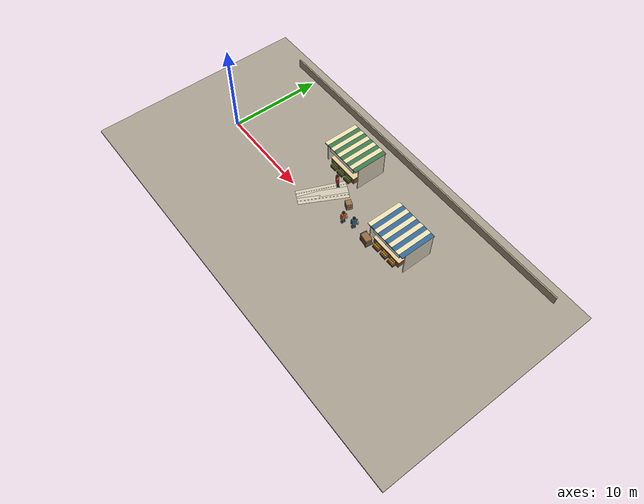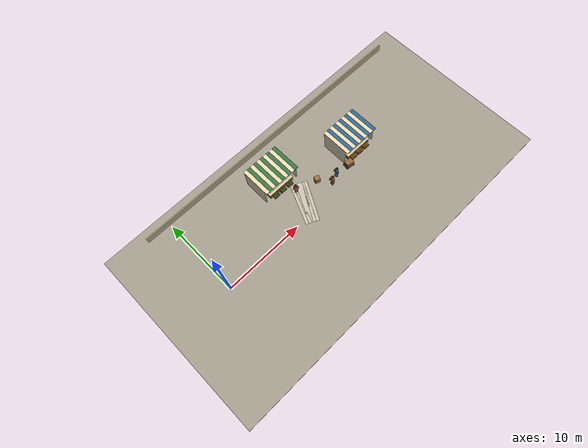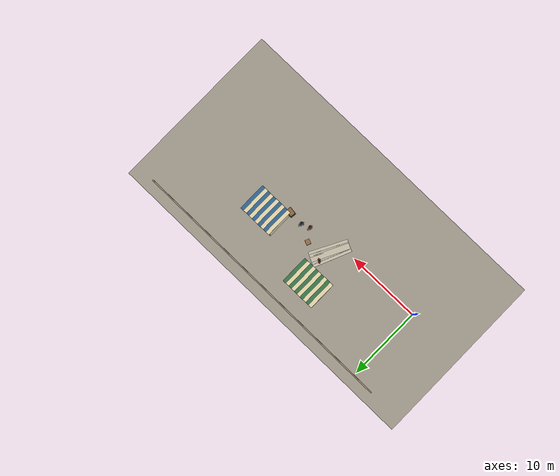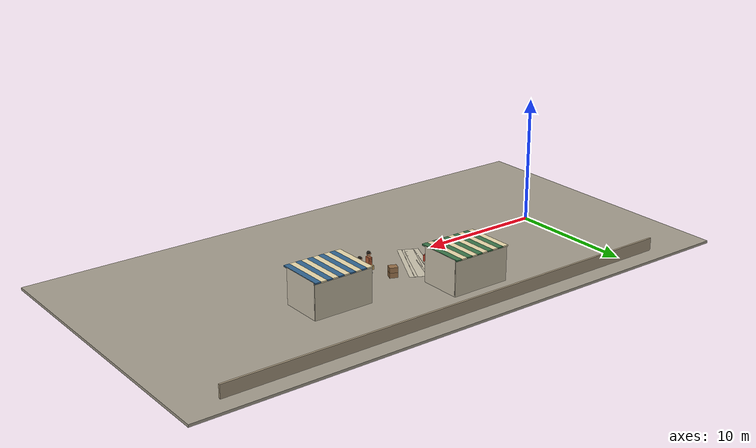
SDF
<sdf version="1.10">
 <world name="swan_market">
  <model name="ground">
   <static>true</static>
   <pose>15 0 -0.1 0 0 0</pose>
   <link name="body">
    <collision name="box_collision"><geometry><box><size>46 24 0.2</size></box></geometry></collision>
    <visual name="box_visual">
     <geometry><box><size>46 24 0.2</size></box></geometry>
     <material><ambient>0.64 0.61 0.55 1</ambient><diffuse>0.64 0.61 0.55 1</diffuse></material>
    </visual>
   </link>
  </model>
  <model name="market_paving_28">
   <static>true</static>
   <pose>12.25 1.7901 0.002 0 0 -0.40758</pose>
   <link name="body">
    <visual name="box_visual">
     <geometry><box><size>0.75 5.2 0.004</size></box></geometry>
     <material><ambient>0.79 0.76 0.68 1</ambient><diffuse>0.79 0.76 0.68 1</diffuse></material>
    </visual>
   </link>
  </model>
  <model name="paving_joint_28">
   <static>true</static>
   <pose>12.25 1.7901 0.0045 0 0 -0.40758</pose>
   <link name="body">
    <visual name="box_visual">
     <geometry><box><size>0.025 5.2 0.001</size></box></geometry>
     <material><ambient>0.67 0.64 0.57 1</ambient><diffuse>0.67 0.64 0.57 1</diffuse></material>
    </visual>
   </link>
  </model>
  <model name="market_paving_29">
   <static>true</static>
   <pose>12.75 1.5562 0.002 0 0 -0.46221</pose>
   <link name="body">
    <visual name="box_visual">
     <geometry><box><size>0.75 5.2 0.004</size></box></geometry>
     <material><ambient>0.79 0.76 0.68 1</ambient><diffuse>0.79 0.76 0.68 1</diffuse></material>
    </visual>
   </link>
  </model>
  <model name="market_paving_30">
   <static>true</static>
   <pose>13.25 1.2978 0.002 0 0 -0.48699</pose>
   <link name="body">
    <visual name="box_visual">
     <geometry><box><size>0.75 5.2 0.004</size></box></geometry>
     <material><ambient>0.79 0.76 0.68 1</ambient><diffuse>0.79 0.76 0.68 1</diffuse></material>
    </visual>
   </link>
  </model>
  <model name="paving_joint_30">
   <static>true</static>
   <pose>13.25 1.2978 0.0045 0 0 -0.48699</pose>
   <link name="body">
    <visual name="box_visual">
     <geometry><box><size>0.025 5.2 0.001</size></box></geometry>
     <material><ambient>0.67 0.64 0.57 1</ambient><diffuse>0.67 0.64 0.57 1</diffuse></material>
    </visual>
   </link>
  </model>
  <model name="boundary_1">
   <static>true</static>
   <pose>16 10.5 0.5 0 0 0</pose>
   <link name="body">
    <collision name="box_collision"><geometry><box><size>38 0.15 1</size></box></geometry></collision>
    <visual name="box_visual">
     <geometry><box><size>38 0.15 1</size></box></geometry>
     <material><ambient>0.65 0.59 0.49 1</ambient><diffuse>0.65 0.59 0.49 1</diffuse></material>
    </visual>
   </link>
  </model>
  <model name="stall_01">
   <static>true</static>
   <pose>12 6.3425 0 0 0 0</pose>
   <link name="body">
    <collision name="rear_collision">
     <pose>0 1.65 1.4 0 0 0</pose>
     <geometry><box><size>4.8 0.15 2.8</size></box></geometry>
    </collision>
    <visual name="rear_visual">
     <pose>0 1.65 1.4 0 0 0</pose>
     <geometry><box><size>4.8 0.15 2.8</size></box></geometry>
     <material><ambient>0.78 0.74 0.65 1</ambient><diffuse>0.78 0.74 0.65 1</diffuse></material>
    </visual>
    <collision name="side_-2.35_collision">
     <pose>-2.35 0 1.4 0 0 0</pose>
     <geometry><box><size>0.12 3.3 2.8</size></box></geometry>
    </collision>
    <visual name="side_-2.35_visual">
     <pose>-2.35 0 1.4 0 0 0</pose>
     <geometry><box><size>0.12 3.3 2.8</size></box></geometry>
     <material><ambient>0.81 0.77 0.69 1</ambient><diffuse>0.81 0.77 0.69 1</diffuse></material>
    </visual>
    <collision name="side_2.35_collision">
     <pose>2.35 0 1.4 0 0 0</pose>
     <geometry><box><size>0.12 3.3 2.8</size></box></geometry>
    </collision>
    <visual name="side_2.35_visual">
     <pose>2.35 0 1.4 0 0 0</pose>
     <geometry><box><size>0.12 3.3 2.8</size></box></geometry>
     <material><ambient>0.81 0.77 0.69 1</ambient><diffuse>0.81 0.77 0.69 1</diffuse></material>
    </visual>
    <collision name="counter_collision">
     <pose>0 -1.22 0.4 0 0 0</pose>
     <geometry><box><size>3.5 0.85 0.8</size></box></geometry>
    </collision>
    <visual name="counter_visual">
     <pose>0 -1.22 0.4 0 0 0</pose>
     <geometry><box><size>3.5 0.85 0.8</size></box></geometry>
     <material><ambient>0.47 0.32 0.21 1</ambient><diffuse>0.47 0.32 0.21 1</diffuse></material>
    </visual>
    <collision name="counter_top_collision">
     <pose>0 -1.22 0.83 0 0 0</pose>
     <geometry><box><size>3.6 0.95 0.06</size></box></geometry>
    </collision>
    <visual name="counter_top_visual">
     <pose>0 -1.22 0.83 0 0 0</pose>
     <geometry><box><size>3.6 0.95 0.06</size></box></geometry>
     <material><ambient>0.86 0.77 0.59 1</ambient><diffuse>0.86 0.77 0.59 1</diffuse></material>
    </visual>
    <collision name="awning_0_collision">
     <pose>-2.16 -0.1 2.78 0 0 0</pose>
     <geometry><box><size>0.48 3.85 0.1</size></box></geometry>
    </collision>
    <visual name="awning_0_visual">
     <pose>-2.16 -0.1 2.78 0 0 0</pose>
     <geometry><box><size>0.48 3.85 0.1</size></box></geometry>
     <material><ambient>0.92 0.86 0.68 1</ambient><diffuse>0.92 0.86 0.68 1</diffuse></material>
    </visual>
    <collision name="awning_1_collision">
     <pose>-1.68 -0.1 2.78 0 0 0</pose>
     <geometry><box><size>0.48 3.85 0.1</size></box></geometry>
    </collision>
    <visual name="awning_1_visual">
     <pose>-1.68 -0.1 2.78 0 0 0</pose>
     <geometry><box><size>0.48 3.85 0.1</size></box></geometry>
     <material><ambient>0.23 0.46 0.29 1</ambient><diffuse>0.23 0.46 0.29 1</diffuse></material>
    </visual>
    <collision name="awning_2_collision">
     <pose>-1.2 -0.1 2.78 0 0 0</pose>
     <geometry><box><size>0.48 3.85 0.1</size></box></geometry>
    </collision>
    <visual name="awning_2_visual">
     <pose>-1.2 -0.1 2.78 0 0 0</pose>
     <geometry><box><size>0.48 3.85 0.1</size></box></geometry>
     <material><ambient>0.92 0.86 0.68 1</ambient><diffuse>0.92 0.86 0.68 1</diffuse></material>
    </visual>
    <collision name="awning_3_collision">
     <pose>-0.72 -0.1 2.78 0 0 0</pose>
     <geometry><box><size>0.48 3.85 0.1</size></box></geometry>
    </collision>
    <visual name="awning_3_visual">
     <pose>-0.72 -0.1 2.78 0 0 0</pose>
     <geometry><box><size>0.48 3.85 0.1</size></box></geometry>
     <material><ambient>0.23 0.46 0.29 1</ambient><diffuse>0.23 0.46 0.29 1</diffuse></material>
    </visual>
    <collision name="awning_4_collision">
     <pose>-0.24 -0.1 2.78 0 0 0</pose>
     <geometry><box><size>0.48 3.85 0.1</size></box></geometry>
    </collision>
    <visual name="awning_4_visual">
     <pose>-0.24 -0.1 2.78 0 0 0</pose>
     <geometry><box><size>0.48 3.85 0.1</size></box></geometry>
     <material><ambient>0.92 0.86 0.68 1</ambient><diffuse>0.92 0.86 0.68 1</diffuse></material>
    </visual>
    <collision name="awning_5_collision">
     <pose>0.24 -0.1 2.78 0 0 0</pose>
     <geometry><box><size>0.48 3.85 0.1</size></box></geometry>
    </collision>
    <visual name="awning_5_visual">
     <pose>0.24 -0.1 2.78 0 0 0</pose>
     <geometry><box><size>0.48 3.85 0.1</size></box></geometry>
     <material><ambient>0.23 0.46 0.29 1</ambient><diffuse>0.23 0.46 0.29 1</diffuse></material>
    </visual>
    <collision name="awning_6_collision">
     <pose>0.72 -0.1 2.78 0 0 0</pose>
     <geometry><box><size>0.48 3.85 0.1</size></box></geometry>
    </collision>
    <visual name="awning_6_visual">
     <pose>0.72 -0.1 2.78 0 0 0</pose>
     <geometry><box><size>0.48 3.85 0.1</size></box></geometry>
     <material><ambient>0.92 0.86 0.68 1</ambient><diffuse>0.92 0.86 0.68 1</diffuse></material>
    </visual>
    <collision name="awning_7_collision">
     <pose>1.2 -0.1 2.78 0 0 0</pose>
     <geometry><box><size>0.48 3.85 0.1</size></box></geometry>
    </collision>
    <visual name="awning_7_visual">
     <pose>1.2 -0.1 2.78 0 0 0</pose>
     <geometry><box><size>0.48 3.85 0.1</size></box></geometry>
     <material><ambient>0.23 0.46 0.29 1</ambient><diffuse>0.23 0.46 0.29 1</diffuse></material>
    </visual>
    <collision name="awning_8_collision">
     <pose>1.68 -0.1 2.78 0 0 0</pose>
     <geometry><box><size>0.48 3.85 0.1</size></box></geometry>
    </collision>
    <visual name="awning_8_visual">
     <pose>1.68 -0.1 2.78 0 0 0</pose>
     <geometry><box><size>0.48 3.85 0.1</size></box></geometry>
     <material><ambient>0.92 0.86 0.68 1</ambient><diffuse>0.92 0.86 0.68 1</diffuse></material>
    </visual>
    <collision name="awning_9_collision">
     <pose>2.16 -0.1 2.78 0 0 0</pose>
     <geometry><box><size>0.48 3.85 0.1</size></box></geometry>
    </collision>
    <visual name="awning_9_visual">
     <pose>2.16 -0.1 2.78 0 0 0</pose>
     <geometry><box><size>0.48 3.85 0.1</size></box></geometry>
     <material><ambient>0.23 0.46 0.29 1</ambient><diffuse>0.23 0.46 0.29 1</diffuse></material>
    </visual>
    <collision name="crate_-1_collision">
     <pose>-1.04 -1.77 0.15 0 0 0</pose>
     <geometry><box><size>0.78 0.6 0.3</size></box></geometry>
    </collision>
    <visual name="crate_-1_visual">
     <pose>-1.04 -1.77 0.15 0 0 0</pose>
     <geometry><box><size>0.78 0.6 0.3</size></box></geometry>
     <material><ambient>0.4 0.28 0.15 1</ambient><diffuse>0.4 0.28 0.15 1</diffuse></material>
    </visual>
    <visual name="produce_-1_0_visual">
     <pose>-1.25 -1.88 0.39 0 0 0</pose>
     <geometry><sphere><radius>0.105</radius></sphere></geometry>
     <material><ambient>0.31 0.58 0.16 1</ambient><diffuse>0.31 0.58 0.16 1</diffuse></material>
    </visual>
    <visual name="produce_-1_1_visual">
     <pose>-1.04 -1.88 0.39 0 0 0</pose>
     <geometry><sphere><radius>0.105</radius></sphere></geometry>
     <material><ambient>0.31 0.58 0.16 1</ambient><diffuse>0.31 0.58 0.16 1</diffuse></material>
    </visual>
    <visual name="produce_-1_2_visual">
     <pose>-0.83 -1.88 0.39 0 0 0</pose>
     <geometry><sphere><radius>0.105</radius></sphere></geometry>
     <material><ambient>0.31 0.58 0.16 1</ambient><diffuse>0.31 0.58 0.16 1</diffuse></material>
    </visual>
    <visual name="produce_-1_3_visual">
     <pose>-1.25 -1.66 0.39 0 0 0</pose>
     <geometry><sphere><radius>0.105</radius></sphere></geometry>
     <material><ambient>0.31 0.58 0.16 1</ambient><diffuse>0.31 0.58 0.16 1</diffuse></material>
    </visual>
    <visual name="produce_-1_4_visual">
     <pose>-1.04 -1.66 0.39 0 0 0</pose>
     <geometry><sphere><radius>0.105</radius></sphere></geometry>
     <material><ambient>0.31 0.58 0.16 1</ambient><diffuse>0.31 0.58 0.16 1</diffuse></material>
    </visual>
    <visual name="produce_-1_5_visual">
     <pose>-0.83 -1.66 0.39 0 0 0</pose>
     <geometry><sphere><radius>0.105</radius></sphere></geometry>
     <material><ambient>0.31 0.58 0.16 1</ambient><diffuse>0.31 0.58 0.16 1</diffuse></material>
    </visual>
    <collision name="crate_0_collision">
     <pose>0 -1.77 0.15 0 0 0</pose>
     <geometry><box><size>0.78 0.6 0.3</size></box></geometry>
    </collision>
    <visual name="crate_0_visual">
     <pose>0 -1.77 0.15 0 0 0</pose>
     <geometry><box><size>0.78 0.6 0.3</size></box></geometry>
     <material><ambient>0.4 0.28 0.15 1</ambient><diffuse>0.4 0.28 0.15 1</diffuse></material>
    </visual>
    <visual name="produce_0_0_visual">
     <pose>-0.21 -1.88 0.39 0 0 0</pose>
     <geometry><sphere><radius>0.105</radius></sphere></geometry>
     <material><ambient>0.31 0.58 0.16 1</ambient><diffuse>0.31 0.58 0.16 1</diffuse></material>
    </visual>
    <visual name="produce_0_1_visual">
     <pose>0 -1.88 0.39 0 0 0</pose>
     <geometry><sphere><radius>0.105</radius></sphere></geometry>
     <material><ambient>0.31 0.58 0.16 1</ambient><diffuse>0.31 0.58 0.16 1</diffuse></material>
    </visual>
    <visual name="produce_0_2_visual">
     <pose>0.21 -1.88 0.39 0 0 0</pose>
     <geometry><sphere><radius>0.105</radius></sphere></geometry>
     <material><ambient>0.31 0.58 0.16 1</ambient><diffuse>0.31 0.58 0.16 1</diffuse></material>
    </visual>
    <visual name="produce_0_3_visual">
     <pose>-0.21 -1.66 0.39 0 0 0</pose>
     <geometry><sphere><radius>0.105</radius></sphere></geometry>
     <material><ambient>0.31 0.58 0.16 1</ambient><diffuse>0.31 0.58 0.16 1</diffuse></material>
    </visual>
    <visual name="produce_0_4_visual">
     <pose>0 -1.66 0.39 0 0 0</pose>
     <geometry><sphere><radius>0.105</radius></sphere></geometry>
     <material><ambient>0.31 0.58 0.16 1</ambient><diffuse>0.31 0.58 0.16 1</diffuse></material>
    </visual>
    <visual name="produce_0_5_visual">
     <pose>0.21 -1.66 0.39 0 0 0</pose>
     <geometry><sphere><radius>0.105</radius></sphere></geometry>
     <material><ambient>0.31 0.58 0.16 1</ambient><diffuse>0.31 0.58 0.16 1</diffuse></material>
    </visual>
    <collision name="crate_1_collision">
     <pose>1.04 -1.77 0.15 0 0 0</pose>
     <geometry><box><size>0.78 0.6 0.3</size></box></geometry>
    </collision>
    <visual name="crate_1_visual">
     <pose>1.04 -1.77 0.15 0 0 0</pose>
     <geometry><box><size>0.78 0.6 0.3</size></box></geometry>
     <material><ambient>0.4 0.28 0.15 1</ambient><diffuse>0.4 0.28 0.15 1</diffuse></material>
    </visual>
    <visual name="produce_1_0_visual">
     <pose>0.83 -1.88 0.39 0 0 0</pose>
     <geometry><sphere><radius>0.105</radius></sphere></geometry>
     <material><ambient>0.31 0.58 0.16 1</ambient><diffuse>0.31 0.58 0.16 1</diffuse></material>
    </visual>
    <visual name="produce_1_1_visual">
     <pose>1.04 -1.88 0.39 0 0 0</pose>
     <geometry><sphere><radius>0.105</radius></sphere></geometry>
     <material><ambient>0.31 0.58 0.16 1</ambient><diffuse>0.31 0.58 0.16 1</diffuse></material>
    </visual>
    <visual name="produce_1_2_visual">
     <pose>1.25 -1.88 0.39 0 0 0</pose>
     <geometry><sphere><radius>0.105</radius></sphere></geometry>
     <material><ambient>0.31 0.58 0.16 1</ambient><diffuse>0.31 0.58 0.16 1</diffuse></material>
    </visual>
    <visual name="produce_1_3_visual">
     <pose>0.83 -1.66 0.39 0 0 0</pose>
     <geometry><sphere><radius>0.105</radius></sphere></geometry>
     <material><ambient>0.31 0.58 0.16 1</ambient><diffuse>0.31 0.58 0.16 1</diffuse></material>
    </visual>
    <visual name="produce_1_4_visual">
     <pose>1.04 -1.66 0.39 0 0 0</pose>
     <geometry><sphere><radius>0.105</radius></sphere></geometry>
     <material><ambient>0.31 0.58 0.16 1</ambient><diffuse>0.31 0.58 0.16 1</diffuse></material>
    </visual>
    <visual name="produce_1_5_visual">
     <pose>1.25 -1.66 0.39 0 0 0</pose>
     <geometry><sphere><radius>0.105</radius></sphere></geometry>
     <material><ambient>0.31 0.58 0.16 1</ambient><diffuse>0.31 0.58 0.16 1</diffuse></material>
    </visual>
   </link>
  </model>
  <model name="signboard_1">
   <static>true</static>
   <pose>12 4.5825 2.24 0 0 0</pose>
   <link name="body">
    <collision name="box_collision"><geometry><box><size>3.65 0.08 0.72</size></box></geometry></collision>
    <visual name="box_visual">
     <geometry><box><size>3.65 0.08 0.72</size></box></geometry>
     <material><ambient>0.23 0.46 0.29 1</ambient><diffuse>0.23 0.46 0.29 1</diffuse></material>
    </visual>
   </link>
  </model>
  <model name="sign_shop_1">
   <static>true</static>
   <pose>12 4.5345 2.24 0 0 0</pose>
   <link name="body">
    <visual name="lettering">
     <geometry>
      <mesh><uri>model://swan_market_assets/meshes/shop_1.dae</uri><scale>3.6 1 0.675</scale></mesh>
     </geometry>
     <material>
      <ambient>1 1 1 1</ambient>
      <diffuse>1 1 1 1</diffuse>
      <emissive>0 0 0 1</emissive>
      <pbr>
       <metal>
        <albedo_map>model://swan_market_assets/materials/textures/shop_1.png</albedo_map>
        <metalness>0</metalness>
        <roughness>1</roughness>
       </metal>
      </pbr>
     </material>
    </visual>
   </link>
  </model>
  <model name="stall_02">
   <static>true</static>
   <pose>22 3.5471 0 0 0 0</pose>
   <link name="body">
    <collision name="rear_collision">
     <pose>0 1.65 1.4 0 0 0</pose>
     <geometry><box><size>4.8 0.15 2.8</size></box></geometry>
    </collision>
    <visual name="rear_visual">
     <pose>0 1.65 1.4 0 0 0</pose>
     <geometry><box><size>4.8 0.15 2.8</size></box></geometry>
     <material><ambient>0.78 0.74 0.65 1</ambient><diffuse>0.78 0.74 0.65 1</diffuse></material>
    </visual>
    <collision name="side_-2.35_collision">
     <pose>-2.35 0 1.4 0 0 0</pose>
     <geometry><box><size>0.12 3.3 2.8</size></box></geometry>
    </collision>
    <visual name="side_-2.35_visual">
     <pose>-2.35 0 1.4 0 0 0</pose>
     <geometry><box><size>0.12 3.3 2.8</size></box></geometry>
     <material><ambient>0.81 0.77 0.69 1</ambient><diffuse>0.81 0.77 0.69 1</diffuse></material>
    </visual>
    <collision name="side_2.35_collision">
     <pose>2.35 0 1.4 0 0 0</pose>
     <geometry><box><size>0.12 3.3 2.8</size></box></geometry>
    </collision>
    <visual name="side_2.35_visual">
     <pose>2.35 0 1.4 0 0 0</pose>
     <geometry><box><size>0.12 3.3 2.8</size></box></geometry>
     <material><ambient>0.81 0.77 0.69 1</ambient><diffuse>0.81 0.77 0.69 1</diffuse></material>
    </visual>
    <collision name="counter_collision">
     <pose>0 -1.22 0.4 0 0 0</pose>
     <geometry><box><size>3.5 0.85 0.8</size></box></geometry>
    </collision>
    <visual name="counter_visual">
     <pose>0 -1.22 0.4 0 0 0</pose>
     <geometry><box><size>3.5 0.85 0.8</size></box></geometry>
     <material><ambient>0.47 0.32 0.21 1</ambient><diffuse>0.47 0.32 0.21 1</diffuse></material>
    </visual>
    <collision name="counter_top_collision">
     <pose>0 -1.22 0.83 0 0 0</pose>
     <geometry><box><size>3.6 0.95 0.06</size></box></geometry>
    </collision>
    <visual name="counter_top_visual">
     <pose>0 -1.22 0.83 0 0 0</pose>
     <geometry><box><size>3.6 0.95 0.06</size></box></geometry>
     <material><ambient>0.86 0.77 0.59 1</ambient><diffuse>0.86 0.77 0.59 1</diffuse></material>
    </visual>
    <collision name="awning_0_collision">
     <pose>-2.16 -0.1 2.78 0 0 0</pose>
     <geometry><box><size>0.48 3.85 0.1</size></box></geometry>
    </collision>
    <visual name="awning_0_visual">
     <pose>-2.16 -0.1 2.78 0 0 0</pose>
     <geometry><box><size>0.48 3.85 0.1</size></box></geometry>
     <material><ambient>0.92 0.86 0.68 1</ambient><diffuse>0.92 0.86 0.68 1</diffuse></material>
    </visual>
    <collision name="awning_1_collision">
     <pose>-1.68 -0.1 2.78 0 0 0</pose>
     <geometry><box><size>0.48 3.85 0.1</size></box></geometry>
    </collision>
    <visual name="awning_1_visual">
     <pose>-1.68 -0.1 2.78 0 0 0</pose>
     <geometry><box><size>0.48 3.85 0.1</size></box></geometry>
     <material><ambient>0.2 0.4 0.57 1</ambient><diffuse>0.2 0.4 0.57 1</diffuse></material>
    </visual>
    <collision name="awning_2_collision">
     <pose>-1.2 -0.1 2.78 0 0 0</pose>
     <geometry><box><size>0.48 3.85 0.1</size></box></geometry>
    </collision>
    <visual name="awning_2_visual">
     <pose>-1.2 -0.1 2.78 0 0 0</pose>
     <geometry><box><size>0.48 3.85 0.1</size></box></geometry>
     <material><ambient>0.92 0.86 0.68 1</ambient><diffuse>0.92 0.86 0.68 1</diffuse></material>
    </visual>
    <collision name="awning_3_collision">
     <pose>-0.72 -0.1 2.78 0 0 0</pose>
     <geometry><box><size>0.48 3.85 0.1</size></box></geometry>
    </collision>
    <visual name="awning_3_visual">
     <pose>-0.72 -0.1 2.78 0 0 0</pose>
     <geometry><box><size>0.48 3.85 0.1</size></box></geometry>
     <material><ambient>0.2 0.4 0.57 1</ambient><diffuse>0.2 0.4 0.57 1</diffuse></material>
    </visual>
    <collision name="awning_4_collision">
     <pose>-0.24 -0.1 2.78 0 0 0</pose>
     <geometry><box><size>0.48 3.85 0.1</size></box></geometry>
    </collision>
    <visual name="awning_4_visual">
     <pose>-0.24 -0.1 2.78 0 0 0</pose>
     <geometry><box><size>0.48 3.85 0.1</size></box></geometry>
     <material><ambient>0.92 0.86 0.68 1</ambient><diffuse>0.92 0.86 0.68 1</diffuse></material>
    </visual>
    <collision name="awning_5_collision">
     <pose>0.24 -0.1 2.78 0 0 0</pose>
     <geometry><box><size>0.48 3.85 0.1</size></box></geometry>
    </collision>
    <visual name="awning_5_visual">
     <pose>0.24 -0.1 2.78 0 0 0</pose>
     <geometry><box><size>0.48 3.85 0.1</size></box></geometry>
     <material><ambient>0.2 0.4 0.57 1</ambient><diffuse>0.2 0.4 0.57 1</diffuse></material>
    </visual>
    <collision name="awning_6_collision">
     <pose>0.72 -0.1 2.78 0 0 0</pose>
     <geometry><box><size>0.48 3.85 0.1</size></box></geometry>
    </collision>
    <visual name="awning_6_visual">
     <pose>0.72 -0.1 2.78 0 0 0</pose>
     <geometry><box><size>0.48 3.85 0.1</size></box></geometry>
     <material><ambient>0.92 0.86 0.68 1</ambient><diffuse>0.92 0.86 0.68 1</diffuse></material>
    </visual>
    <collision name="awning_7_collision">
     <pose>1.2 -0.1 2.78 0 0 0</pose>
     <geometry><box><size>0.48 3.85 0.1</size></box></geometry>
    </collision>
    <visual name="awning_7_visual">
     <pose>1.2 -0.1 2.78 0 0 0</pose>
     <geometry><box><size>0.48 3.85 0.1</size></box></geometry>
     <material><ambient>0.2 0.4 0.57 1</ambient><diffuse>0.2 0.4 0.57 1</diffuse></material>
    </visual>
    <collision name="awning_8_collision">
     <pose>1.68 -0.1 2.78 0 0 0</pose>
     <geometry><box><size>0.48 3.85 0.1</size></box></geometry>
    </collision>
    <visual name="awning_8_visual">
     <pose>1.68 -0.1 2.78 0 0 0</pose>
     <geometry><box><size>0.48 3.85 0.1</size></box></geometry>
     <material><ambient>0.92 0.86 0.68 1</ambient><diffuse>0.92 0.86 0.68 1</diffuse></material>
    </visual>
    <collision name="awning_9_collision">
     <pose>2.16 -0.1 2.78 0 0 0</pose>
     <geometry><box><size>0.48 3.85 0.1</size></box></geometry>
    </collision>
    <visual name="awning_9_visual">
     <pose>2.16 -0.1 2.78 0 0 0</pose>
     <geometry><box><size>0.48 3.85 0.1</size></box></geometry>
     <material><ambient>0.2 0.4 0.57 1</ambient><diffuse>0.2 0.4 0.57 1</diffuse></material>
    </visual>
    <collision name="crate_-1_collision">
     <pose>-1.04 -1.77 0.15 0 0 0</pose>
     <geometry><box><size>0.78 0.6 0.3</size></box></geometry>
    </collision>
    <visual name="crate_-1_visual">
     <pose>-1.04 -1.77 0.15 0 0 0</pose>
     <geometry><box><size>0.78 0.6 0.3</size></box></geometry>
     <material><ambient>0.4 0.28 0.15 1</ambient><diffuse>0.4 0.28 0.15 1</diffuse></material>
    </visual>
    <visual name="produce_-1_0_visual">
     <pose>-1.25 -1.88 0.39 0 0 0</pose>
     <geometry><sphere><radius>0.105</radius></sphere></geometry>
     <material><ambient>0.84 0.59 0.1 1</ambient><diffuse>0.84 0.59 0.1 1</diffuse></material>
    </visual>
    <visual name="produce_-1_1_visual">
     <pose>-1.04 -1.88 0.39 0 0 0</pose>
     <geometry><sphere><radius>0.105</radius></sphere></geometry>
     <material><ambient>0.84 0.59 0.1 1</ambient><diffuse>0.84 0.59 0.1 1</diffuse></material>
    </visual>
    <visual name="produce_-1_2_visual">
     <pose>-0.83 -1.88 0.39 0 0 0</pose>
     <geometry><sphere><radius>0.105</radius></sphere></geometry>
     <material><ambient>0.84 0.59 0.1 1</ambient><diffuse>0.84 0.59 0.1 1</diffuse></material>
    </visual>
    <visual name="produce_-1_3_visual">
     <pose>-1.25 -1.66 0.39 0 0 0</pose>
     <geometry><sphere><radius>0.105</radius></sphere></geometry>
     <material><ambient>0.84 0.59 0.1 1</ambient><diffuse>0.84 0.59 0.1 1</diffuse></material>
    </visual>
    <visual name="produce_-1_4_visual">
     <pose>-1.04 -1.66 0.39 0 0 0</pose>
     <geometry><sphere><radius>0.105</radius></sphere></geometry>
     <material><ambient>0.84 0.59 0.1 1</ambient><diffuse>0.84 0.59 0.1 1</diffuse></material>
    </visual>
    <visual name="produce_-1_5_visual">
     <pose>-0.83 -1.66 0.39 0 0 0</pose>
     <geometry><sphere><radius>0.105</radius></sphere></geometry>
     <material><ambient>0.84 0.59 0.1 1</ambient><diffuse>0.84 0.59 0.1 1</diffuse></material>
    </visual>
    <collision name="crate_0_collision">
     <pose>0 -1.77 0.15 0 0 0</pose>
     <geometry><box><size>0.78 0.6 0.3</size></box></geometry>
    </collision>
    <visual name="crate_0_visual">
     <pose>0 -1.77 0.15 0 0 0</pose>
     <geometry><box><size>0.78 0.6 0.3</size></box></geometry>
     <material><ambient>0.4 0.28 0.15 1</ambient><diffuse>0.4 0.28 0.15 1</diffuse></material>
    </visual>
    <visual name="produce_0_0_visual">
     <pose>-0.21 -1.88 0.39 0 0 0</pose>
     <geometry><sphere><radius>0.105</radius></sphere></geometry>
     <material><ambient>0.84 0.59 0.1 1</ambient><diffuse>0.84 0.59 0.1 1</diffuse></material>
    </visual>
    <visual name="produce_0_1_visual">
     <pose>0 -1.88 0.39 0 0 0</pose>
     <geometry><sphere><radius>0.105</radius></sphere></geometry>
     <material><ambient>0.84 0.59 0.1 1</ambient><diffuse>0.84 0.59 0.1 1</diffuse></material>
    </visual>
    <visual name="produce_0_2_visual">
     <pose>0.21 -1.88 0.39 0 0 0</pose>
     <geometry><sphere><radius>0.105</radius></sphere></geometry>
     <material><ambient>0.84 0.59 0.1 1</ambient><diffuse>0.84 0.59 0.1 1</diffuse></material>
    </visual>
    <visual name="produce_0_3_visual">
     <pose>-0.21 -1.66 0.39 0 0 0</pose>
     <geometry><sphere><radius>0.105</radius></sphere></geometry>
     <material><ambient>0.84 0.59 0.1 1</ambient><diffuse>0.84 0.59 0.1 1</diffuse></material>
    </visual>
    <visual name="produce_0_4_visual">
     <pose>0 -1.66 0.39 0 0 0</pose>
     <geometry><sphere><radius>0.105</radius></sphere></geometry>
     <material><ambient>0.84 0.59 0.1 1</ambient><diffuse>0.84 0.59 0.1 1</diffuse></material>
    </visual>
    <visual name="produce_0_5_visual">
     <pose>0.21 -1.66 0.39 0 0 0</pose>
     <geometry><sphere><radius>0.105</radius></sphere></geometry>
     <material><ambient>0.84 0.59 0.1 1</ambient><diffuse>0.84 0.59 0.1 1</diffuse></material>
    </visual>
    <collision name="crate_1_collision">
     <pose>1.04 -1.77 0.15 0 0 0</pose>
     <geometry><box><size>0.78 0.6 0.3</size></box></geometry>
    </collision>
    <visual name="crate_1_visual">
     <pose>1.04 -1.77 0.15 0 0 0</pose>
     <geometry><box><size>0.78 0.6 0.3</size></box></geometry>
     <material><ambient>0.4 0.28 0.15 1</ambient><diffuse>0.4 0.28 0.15 1</diffuse></material>
    </visual>
    <visual name="produce_1_0_visual">
     <pose>0.83 -1.88 0.39 0 0 0</pose>
     <geometry><sphere><radius>0.105</radius></sphere></geometry>
     <material><ambient>0.84 0.59 0.1 1</ambient><diffuse>0.84 0.59 0.1 1</diffuse></material>
    </visual>
    <visual name="produce_1_1_visual">
     <pose>1.04 -1.88 0.39 0 0 0</pose>
     <geometry><sphere><radius>0.105</radius></sphere></geometry>
     <material><ambient>0.84 0.59 0.1 1</ambient><diffuse>0.84 0.59 0.1 1</diffuse></material>
    </visual>
    <visual name="produce_1_2_visual">
     <pose>1.25 -1.88 0.39 0 0 0</pose>
     <geometry><sphere><radius>0.105</radius></sphere></geometry>
     <material><ambient>0.84 0.59 0.1 1</ambient><diffuse>0.84 0.59 0.1 1</diffuse></material>
    </visual>
    <visual name="produce_1_3_visual">
     <pose>0.83 -1.66 0.39 0 0 0</pose>
     <geometry><sphere><radius>0.105</radius></sphere></geometry>
     <material><ambient>0.84 0.59 0.1 1</ambient><diffuse>0.84 0.59 0.1 1</diffuse></material>
    </visual>
    <visual name="produce_1_4_visual">
     <pose>1.04 -1.66 0.39 0 0 0</pose>
     <geometry><sphere><radius>0.105</radius></sphere></geometry>
     <material><ambient>0.84 0.59 0.1 1</ambient><diffuse>0.84 0.59 0.1 1</diffuse></material>
    </visual>
    <visual name="produce_1_5_visual">
     <pose>1.25 -1.66 0.39 0 0 0</pose>
     <geometry><sphere><radius>0.105</radius></sphere></geometry>
     <material><ambient>0.84 0.59 0.1 1</ambient><diffuse>0.84 0.59 0.1 1</diffuse></material>
    </visual>
   </link>
  </model>
  <model name="signboard_2">
   <static>true</static>
   <pose>22 1.7871 2.24 0 0 0</pose>
   <link name="body">
    <collision name="box_collision"><geometry><box><size>3.65 0.08 0.72</size></box></geometry></collision>
    <visual name="box_visual">
     <geometry><box><size>3.65 0.08 0.72</size></box></geometry>
     <material><ambient>0.2 0.4 0.57 1</ambient><diffuse>0.2 0.4 0.57 1</diffuse></material>
    </visual>
   </link>
  </model>
  <model name="sign_shop_2">
   <static>true</static>
   <pose>22 1.7391 2.24 0 0 0</pose>
   <link name="body">
    <visual name="lettering">
     <geometry>
      <mesh><uri>model://swan_market_assets/meshes/shop_2.dae</uri><scale>3.6 1 0.675</scale></mesh>
     </geometry>
     <material>
      <ambient>1 1 1 1</ambient>
      <diffuse>1 1 1 1</diffuse>
      <emissive>0 0 0 1</emissive>
      <pbr>
       <metal>
        <albedo_map>model://swan_market_assets/materials/textures/shop_2.png</albedo_map>
        <metalness>0</metalness>
        <roughness>1</roughness>
       </metal>
      </pbr>
     </material>
    </visual>
   </link>
  </model>
  <model name="shopper_crossing">
   <static>true</static>
   <pose>16.71 1.0471 0 0 0 3.0315</pose>
   <link name="body">
    <collision name="leg_-1_collision">
     <pose>0 -0.12 0.4 0 0 0</pose>
     <geometry><cylinder><radius>0.085</radius><length>0.68</length></cylinder></geometry>
    </collision>
    <visual name="leg_-1_visual">
     <pose>0 -0.12 0.4 0 0 0</pose>
     <geometry><cylinder><radius>0.085</radius><length>0.68</length></cylinder></geometry>
     <material><ambient>0.12 0.15 0.18 1</ambient><diffuse>0.12 0.15 0.18 1</diffuse></material>
    </visual>
    <collision name="shoe_-1_collision">
     <pose>0.06 -0.12 0.055 0 0 0</pose>
     <geometry><box><size>0.28 0.17 0.11</size></box></geometry>
    </collision>
    <visual name="shoe_-1_visual">
     <pose>0.06 -0.12 0.055 0 0 0</pose>
     <geometry><box><size>0.28 0.17 0.11</size></box></geometry>
     <material><ambient>0.08 0.07 0.06 1</ambient><diffuse>0.08 0.07 0.06 1</diffuse></material>
    </visual>
    <collision name="arm_-1_collision">
     <pose>0.02 -0.27 1.02 0 -0.12 0</pose>
     <geometry><cylinder><radius>0.068</radius><length>0.48</length></cylinder></geometry>
    </collision>
    <visual name="arm_-1_visual">
     <pose>0.02 -0.27 1.02 0 -0.12 0</pose>
     <geometry><cylinder><radius>0.068</radius><length>0.48</length></cylinder></geometry>
     <material><ambient>0.74 0.38 0.22 1</ambient><diffuse>0.74 0.38 0.22 1</diffuse></material>
    </visual>
    <collision name="leg_1_collision">
     <pose>0 0.12 0.4 0 0 0</pose>
     <geometry><cylinder><radius>0.085</radius><length>0.68</length></cylinder></geometry>
    </collision>
    <visual name="leg_1_visual">
     <pose>0 0.12 0.4 0 0 0</pose>
     <geometry><cylinder><radius>0.085</radius><length>0.68</length></cylinder></geometry>
     <material><ambient>0.12 0.15 0.18 1</ambient><diffuse>0.12 0.15 0.18 1</diffuse></material>
    </visual>
    <collision name="shoe_1_collision">
     <pose>0.06 0.12 0.055 0 0 0</pose>
     <geometry><box><size>0.28 0.17 0.11</size></box></geometry>
    </collision>
    <visual name="shoe_1_visual">
     <pose>0.06 0.12 0.055 0 0 0</pose>
     <geometry><box><size>0.28 0.17 0.11</size></box></geometry>
     <material><ambient>0.08 0.07 0.06 1</ambient><diffuse>0.08 0.07 0.06 1</diffuse></material>
    </visual>
    <collision name="arm_1_collision">
     <pose>0.02 0.27 1.02 0 0.12 0</pose>
     <geometry><cylinder><radius>0.068</radius><length>0.48</length></cylinder></geometry>
    </collision>
    <visual name="arm_1_visual">
     <pose>0.02 0.27 1.02 0 0.12 0</pose>
     <geometry><cylinder><radius>0.068</radius><length>0.48</length></cylinder></geometry>
     <material><ambient>0.74 0.38 0.22 1</ambient><diffuse>0.74 0.38 0.22 1</diffuse></material>
    </visual>
    <collision name="torso_collision">
     <pose>0 0 1.02 0 0 0</pose>
     <geometry><box><size>0.3 0.43 0.58</size></box></geometry>
    </collision>
    <visual name="torso_visual">
     <pose>0 0 1.02 0 0 0</pose>
     <geometry><box><size>0.3 0.43 0.58</size></box></geometry>
     <material><ambient>0.74 0.38 0.22 1</ambient><diffuse>0.74 0.38 0.22 1</diffuse></material>
    </visual>
    <visual name="neck_visual">
     <pose>0 0 1.37 0 0 0</pose>
     <geometry><cylinder><radius>0.07</radius><length>0.13</length></cylinder></geometry>
     <material><ambient>0.77 0.56 0.4 1</ambient><diffuse>0.77 0.56 0.4 1</diffuse></material>
    </visual>
    <collision name="head_collision">
     <pose>0 0 1.57 0 0 0</pose>
     <geometry><sphere><radius>0.16</radius></sphere></geometry>
    </collision>
    <visual name="head_visual">
     <pose>0 0 1.57 0 0 0</pose>
     <geometry><sphere><radius>0.16</radius></sphere></geometry>
     <material><ambient>0.77 0.56 0.4 1</ambient><diffuse>0.77 0.56 0.4 1</diffuse></material>
    </visual>
    <visual name="hair_visual">
     <pose>-0.025 0 1.63 0 0 0</pose>
     <geometry><sphere><radius>0.155</radius></sphere></geometry>
     <material><ambient>0.1 0.08 0.06 1</ambient><diffuse>0.1 0.08 0.06 1</diffuse></material>
    </visual>
    <collision name="shopping_bag_collision">
     <pose>0.04 -0.38 0.6 0 0 0</pose>
     <geometry><box><size>0.24 0.17 0.33</size></box></geometry>
    </collision>
    <visual name="shopping_bag_visual">
     <pose>0.04 -0.38 0.6 0 0 0</pose>
     <geometry><box><size>0.24 0.17 0.33</size></box></geometry>
     <material><ambient>0.78 0.65 0.39 1</ambient><diffuse>0.78 0.65 0.39 1</diffuse></material>
    </visual>
   </link>
  </model>
  <model name="handcart_unloading">
   <static>true</static>
   <pose>19.803 1.3575 0 0 0 -0.14026</pose>
   <link name="body">
    <collision name="bed_collision">
     <pose>0 0 0.2 0 0 0</pose>
     <geometry><box><size>1.15 0.8 0.1</size></box></geometry>
    </collision>
    <visual name="bed_visual">
     <pose>0 0 0.2 0 0 0</pose>
     <geometry><box><size>1.15 0.8 0.1</size></box></geometry>
     <material><ambient>0.25 0.33 0.31 1</ambient><diffuse>0.25 0.33 0.31 1</diffuse></material>
    </visual>
    <collision name="wheel_-0.4_-0.34_collision">
     <pose>-0.4 -0.34 0.13 1.5708 0 0</pose>
     <geometry><cylinder><radius>0.13</radius><length>0.1</length></cylinder></geometry>
    </collision>
    <visual name="wheel_-0.4_-0.34_visual">
     <pose>-0.4 -0.34 0.13 1.5708 0 0</pose>
     <geometry><cylinder><radius>0.13</radius><length>0.1</length></cylinder></geometry>
     <material><ambient>0.09 0.09 0.08 1</ambient><diffuse>0.09 0.09 0.08 1</diffuse></material>
    </visual>
    <collision name="wheel_-0.4_0.34_collision">
     <pose>-0.4 0.34 0.13 1.5708 0 0</pose>
     <geometry><cylinder><radius>0.13</radius><length>0.1</length></cylinder></geometry>
    </collision>
    <visual name="wheel_-0.4_0.34_visual">
     <pose>-0.4 0.34 0.13 1.5708 0 0</pose>
     <geometry><cylinder><radius>0.13</radius><length>0.1</length></cylinder></geometry>
     <material><ambient>0.09 0.09 0.08 1</ambient><diffuse>0.09 0.09 0.08 1</diffuse></material>
    </visual>
    <collision name="wheel_0.4_-0.34_collision">
     <pose>0.4 -0.34 0.13 1.5708 0 0</pose>
     <geometry><cylinder><radius>0.13</radius><length>0.1</length></cylinder></geometry>
    </collision>
    <visual name="wheel_0.4_-0.34_visual">
     <pose>0.4 -0.34 0.13 1.5708 0 0</pose>
     <geometry><cylinder><radius>0.13</radius><length>0.1</length></cylinder></geometry>
     <material><ambient>0.09 0.09 0.08 1</ambient><diffuse>0.09 0.09 0.08 1</diffuse></material>
    </visual>
    <collision name="wheel_0.4_0.34_collision">
     <pose>0.4 0.34 0.13 1.5708 0 0</pose>
     <geometry><cylinder><radius>0.13</radius><length>0.1</length></cylinder></geometry>
    </collision>
    <visual name="wheel_0.4_0.34_visual">
     <pose>0.4 0.34 0.13 1.5708 0 0</pose>
     <geometry><cylinder><radius>0.13</radius><length>0.1</length></cylinder></geometry>
     <material><ambient>0.09 0.09 0.08 1</ambient><diffuse>0.09 0.09 0.08 1</diffuse></material>
    </visual>
    <collision name="cargo_0.41_collision">
     <pose>0 0 0.41 0 0 0</pose>
     <geometry><box><size>0.95 0.68 0.3</size></box></geometry>
    </collision>
    <visual name="cargo_0.41_visual">
     <pose>0 0 0.41 0 0 0</pose>
     <geometry><box><size>0.95 0.68 0.3</size></box></geometry>
     <material><ambient>0.57 0.4 0.24 1</ambient><diffuse>0.57 0.4 0.24 1</diffuse></material>
    </visual>
    <collision name="cargo_0.73_collision">
     <pose>0 0 0.73 0 0 0</pose>
     <geometry><box><size>0.95 0.68 0.3</size></box></geometry>
    </collision>
    <visual name="cargo_0.73_visual">
     <pose>0 0 0.73 0 0 0</pose>
     <geometry><box><size>0.95 0.68 0.3</size></box></geometry>
     <material><ambient>0.57 0.4 0.24 1</ambient><diffuse>0.57 0.4 0.24 1</diffuse></material>
    </visual>
    <collision name="handle_-0.34_collision">
     <pose>-0.55 -0.34 0.58 0 0 0</pose>
     <geometry><cylinder><radius>0.025</radius><length>0.75</length></cylinder></geometry>
    </collision>
    <visual name="handle_-0.34_visual">
     <pose>-0.55 -0.34 0.58 0 0 0</pose>
     <geometry><cylinder><radius>0.025</radius><length>0.75</length></cylinder></geometry>
     <material><ambient>0.3 0.34 0.32 1</ambient><diffuse>0.3 0.34 0.32 1</diffuse></material>
    </visual>
    <collision name="handle_0.34_collision">
     <pose>-0.55 0.34 0.58 0 0 0</pose>
     <geometry><cylinder><radius>0.025</radius><length>0.75</length></cylinder></geometry>
    </collision>
    <visual name="handle_0.34_visual">
     <pose>-0.55 0.34 0.58 0 0 0</pose>
     <geometry><cylinder><radius>0.025</radius><length>0.75</length></cylinder></geometry>
     <material><ambient>0.3 0.34 0.32 1</ambient><diffuse>0.3 0.34 0.32 1</diffuse></material>
    </visual>
    <collision name="grip_collision">
     <pose>-0.55 0 0.95 1.5708 0 0</pose>
     <geometry><cylinder><radius>0.03</radius><length>0.7</length></cylinder></geometry>
    </collision>
    <visual name="grip_visual">
     <pose>-0.55 0 0.95 1.5708 0 0</pose>
     <geometry><cylinder><radius>0.03</radius><length>0.7</length></cylinder></geometry>
     <material><ambient>0.15 0.16 0.15 1</ambient><diffuse>0.15 0.16 0.15 1</diffuse></material>
    </visual>
   </link>
  </model>
  <model name="stock_stack_1_0">
   <static>true</static>
   <pose>15.648 2.5571 0.2 0 0 -0.3959</pose>
   <link name="body">
    <collision name="box_collision"><geometry><box><size>0.65 0.6 0.4</size></box></geometry></collision>
    <visual name="box_visual">
     <geometry><box><size>0.65 0.6 0.4</size></box></geometry>
     <material><ambient>0.58 0.43 0.28 1</ambient><diffuse>0.58 0.43 0.28 1</diffuse></material>
    </visual>
   </link>
  </model>
  <model name="stock_stack_1_1">
   <static>true</static>
   <pose>15.648 2.5571 0.6 0 0 -0.3959</pose>
   <link name="body">
    <collision name="box_collision"><geometry><box><size>0.65 0.6 0.4</size></box></geometry></collision>
    <visual name="box_visual">
     <geometry><box><size>0.65 0.6 0.4</size></box></geometry>
     <material><ambient>0.58 0.43 0.28 1</ambient><diffuse>0.58 0.43 0.28 1</diffuse></material>
    </visual>
   </link>
  </model>
  <model name="crowd_04">
   <static>true</static>
   <pose>12.964 3.2786 0 0 0 0.98558</pose>
   <link name="body">
    <collision name="leg_-1_collision">
     <pose>0 -0.12 0.4 0 0 0</pose>
     <geometry><cylinder><radius>0.085</radius><length>0.68</length></cylinder></geometry>
    </collision>
    <visual name="leg_-1_visual">
     <pose>0 -0.12 0.4 0 0 0</pose>
     <geometry><cylinder><radius>0.085</radius><length>0.68</length></cylinder></geometry>
     <material><ambient>0.12 0.15 0.18 1</ambient><diffuse>0.12 0.15 0.18 1</diffuse></material>
    </visual>
    <collision name="shoe_-1_collision">
     <pose>0.06 -0.12 0.055 0 0 0</pose>
     <geometry><box><size>0.28 0.17 0.11</size></box></geometry>
    </collision>
    <visual name="shoe_-1_visual">
     <pose>0.06 -0.12 0.055 0 0 0</pose>
     <geometry><box><size>0.28 0.17 0.11</size></box></geometry>
     <material><ambient>0.08 0.07 0.06 1</ambient><diffuse>0.08 0.07 0.06 1</diffuse></material>
    </visual>
    <collision name="arm_-1_collision">
     <pose>0.02 -0.27 1.02 0 -0.12 0</pose>
     <geometry><cylinder><radius>0.068</radius><length>0.48</length></cylinder></geometry>
    </collision>
    <visual name="arm_-1_visual">
     <pose>0.02 -0.27 1.02 0 -0.12 0</pose>
     <geometry><cylinder><radius>0.068</radius><length>0.48</length></cylinder></geometry>
     <material><ambient>0.72 0.24 0.16 1</ambient><diffuse>0.72 0.24 0.16 1</diffuse></material>
    </visual>
    <collision name="leg_1_collision">
     <pose>0 0.12 0.4 0 0 0</pose>
     <geometry><cylinder><radius>0.085</radius><length>0.68</length></cylinder></geometry>
    </collision>
    <visual name="leg_1_visual">
     <pose>0 0.12 0.4 0 0 0</pose>
     <geometry><cylinder><radius>0.085</radius><length>0.68</length></cylinder></geometry>
     <material><ambient>0.12 0.15 0.18 1</ambient><diffuse>0.12 0.15 0.18 1</diffuse></material>
    </visual>
    <collision name="shoe_1_collision">
     <pose>0.06 0.12 0.055 0 0 0</pose>
     <geometry><box><size>0.28 0.17 0.11</size></box></geometry>
    </collision>
    <visual name="shoe_1_visual">
     <pose>0.06 0.12 0.055 0 0 0</pose>
     <geometry><box><size>0.28 0.17 0.11</size></box></geometry>
     <material><ambient>0.08 0.07 0.06 1</ambient><diffuse>0.08 0.07 0.06 1</diffuse></material>
    </visual>
    <collision name="arm_1_collision">
     <pose>0.02 0.27 1.02 0 0.12 0</pose>
     <geometry><cylinder><radius>0.068</radius><length>0.48</length></cylinder></geometry>
    </collision>
    <visual name="arm_1_visual">
     <pose>0.02 0.27 1.02 0 0.12 0</pose>
     <geometry><cylinder><radius>0.068</radius><length>0.48</length></cylinder></geometry>
     <material><ambient>0.72 0.24 0.16 1</ambient><diffuse>0.72 0.24 0.16 1</diffuse></material>
    </visual>
    <collision name="torso_collision">
     <pose>0 0 1.02 0 0 0</pose>
     <geometry><box><size>0.3 0.43 0.58</size></box></geometry>
    </collision>
    <visual name="torso_visual">
     <pose>0 0 1.02 0 0 0</pose>
     <geometry><box><size>0.3 0.43 0.58</size></box></geometry>
     <material><ambient>0.72 0.24 0.16 1</ambient><diffuse>0.72 0.24 0.16 1</diffuse></material>
    </visual>
    <visual name="neck_visual">
     <pose>0 0 1.37 0 0 0</pose>
     <geometry><cylinder><radius>0.07</radius><length>0.13</length></cylinder></geometry>
     <material><ambient>0.77 0.56 0.4 1</ambient><diffuse>0.77 0.56 0.4 1</diffuse></material>
    </visual>
    <collision name="head_collision">
     <pose>0 0 1.57 0 0 0</pose>
     <geometry><sphere><radius>0.16</radius></sphere></geometry>
    </collision>
    <visual name="head_visual">
     <pose>0 0 1.57 0 0 0</pose>
     <geometry><sphere><radius>0.16</radius></sphere></geometry>
     <material><ambient>0.77 0.56 0.4 1</ambient><diffuse>0.77 0.56 0.4 1</diffuse></material>
    </visual>
    <visual name="hair_visual">
     <pose>-0.025 0 1.63 0 0 0</pose>
     <geometry><sphere><radius>0.155</radius></sphere></geometry>
     <material><ambient>0.1 0.08 0.06 1</ambient><diffuse>0.1 0.08 0.06 1</diffuse></material>
    </visual>
   </link>
  </model>
  <model name="crowd_06">
   <static>true</static>
   <pose>17.804 1.4502 0 0 0 2.7976</pose>
   <link name="body">
    <collision name="leg_-1_collision">
     <pose>0 -0.12 0.4 0 0 0</pose>
     <geometry><cylinder><radius>0.085</radius><length>0.68</length></cylinder></geometry>
    </collision>
    <visual name="leg_-1_visual">
     <pose>0 -0.12 0.4 0 0 0</pose>
     <geometry><cylinder><radius>0.085</radius><length>0.68</length></cylinder></geometry>
     <material><ambient>0.12 0.15 0.18 1</ambient><diffuse>0.12 0.15 0.18 1</diffuse></material>
    </visual>
    <collision name="shoe_-1_collision">
     <pose>0.06 -0.12 0.055 0 0 0</pose>
     <geometry><box><size>0.28 0.17 0.11</size></box></geometry>
    </collision>
    <visual name="shoe_-1_visual">
     <pose>0.06 -0.12 0.055 0 0 0</pose>
     <geometry><box><size>0.28 0.17 0.11</size></box></geometry>
     <material><ambient>0.08 0.07 0.06 1</ambient><diffuse>0.08 0.07 0.06 1</diffuse></material>
    </visual>
    <collision name="arm_-1_collision">
     <pose>0.02 -0.27 1.02 0 -0.12 0</pose>
     <geometry><cylinder><radius>0.068</radius><length>0.48</length></cylinder></geometry>
    </collision>
    <visual name="arm_-1_visual">
     <pose>0.02 -0.27 1.02 0 -0.12 0</pose>
     <geometry><cylinder><radius>0.068</radius><length>0.48</length></cylinder></geometry>
     <material><ambient>0.2 0.4 0.57 1</ambient><diffuse>0.2 0.4 0.57 1</diffuse></material>
    </visual>
    <collision name="leg_1_collision">
     <pose>0 0.12 0.4 0 0 0</pose>
     <geometry><cylinder><radius>0.085</radius><length>0.68</length></cylinder></geometry>
    </collision>
    <visual name="leg_1_visual">
     <pose>0 0.12 0.4 0 0 0</pose>
     <geometry><cylinder><radius>0.085</radius><length>0.68</length></cylinder></geometry>
     <material><ambient>0.12 0.15 0.18 1</ambient><diffuse>0.12 0.15 0.18 1</diffuse></material>
    </visual>
    <collision name="shoe_1_collision">
     <pose>0.06 0.12 0.055 0 0 0</pose>
     <geometry><box><size>0.28 0.17 0.11</size></box></geometry>
    </collision>
    <visual name="shoe_1_visual">
     <pose>0.06 0.12 0.055 0 0 0</pose>
     <geometry><box><size>0.28 0.17 0.11</size></box></geometry>
     <material><ambient>0.08 0.07 0.06 1</ambient><diffuse>0.08 0.07 0.06 1</diffuse></material>
    </visual>
    <collision name="arm_1_collision">
     <pose>0.02 0.27 1.02 0 0.12 0</pose>
     <geometry><cylinder><radius>0.068</radius><length>0.48</length></cylinder></geometry>
    </collision>
    <visual name="arm_1_visual">
     <pose>0.02 0.27 1.02 0 0.12 0</pose>
     <geometry><cylinder><radius>0.068</radius><length>0.48</length></cylinder></geometry>
     <material><ambient>0.2 0.4 0.57 1</ambient><diffuse>0.2 0.4 0.57 1</diffuse></material>
    </visual>
    <collision name="torso_collision">
     <pose>0 0 1.02 0 0 0</pose>
     <geometry><box><size>0.3 0.43 0.58</size></box></geometry>
    </collision>
    <visual name="torso_visual">
     <pose>0 0 1.02 0 0 0</pose>
     <geometry><box><size>0.3 0.43 0.58</size></box></geometry>
     <material><ambient>0.2 0.4 0.57 1</ambient><diffuse>0.2 0.4 0.57 1</diffuse></material>
    </visual>
    <visual name="neck_visual">
     <pose>0 0 1.37 0 0 0</pose>
     <geometry><cylinder><radius>0.07</radius><length>0.13</length></cylinder></geometry>
     <material><ambient>0.77 0.56 0.4 1</ambient><diffuse>0.77 0.56 0.4 1</diffuse></material>
    </visual>
    <collision name="head_collision">
     <pose>0 0 1.57 0 0 0</pose>
     <geometry><sphere><radius>0.16</radius></sphere></geometry>
    </collision>
    <visual name="head_visual">
     <pose>0 0 1.57 0 0 0</pose>
     <geometry><sphere><radius>0.16</radius></sphere></geometry>
     <material><ambient>0.77 0.56 0.4 1</ambient><diffuse>0.77 0.56 0.4 1</diffuse></material>
    </visual>
    <visual name="hair_visual">
     <pose>-0.025 0 1.63 0 0 0</pose>
     <geometry><sphere><radius>0.155</radius></sphere></geometry>
     <material><ambient>0.1 0.08 0.06 1</ambient><diffuse>0.1 0.08 0.06 1</diffuse></material>
    </visual>
    <collision name="shopping_bag_collision">
     <pose>0.04 -0.38 0.6 0 0 0</pose>
     <geometry><box><size>0.24 0.17 0.33</size></box></geometry>
    </collision>
    <visual name="shopping_bag_visual">
     <pose>0.04 -0.38 0.6 0 0 0</pose>
     <geometry><box><size>0.24 0.17 0.33</size></box></geometry>
     <material><ambient>0.78 0.65 0.39 1</ambient><diffuse>0.78 0.65 0.39 1</diffuse></material>
    </visual>
   </link>
  </model>
 </world>
</sdf>
